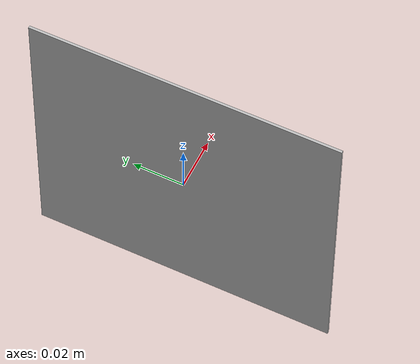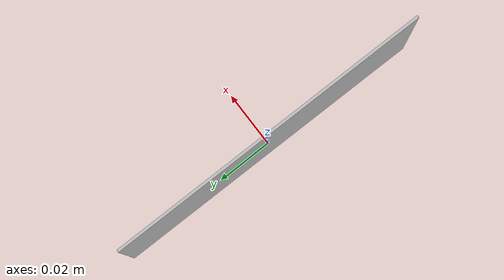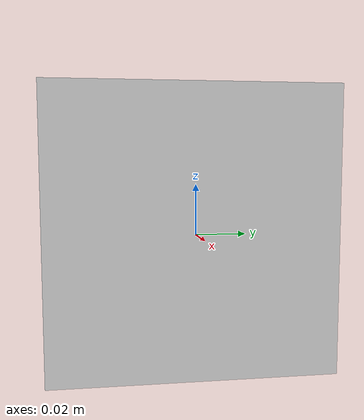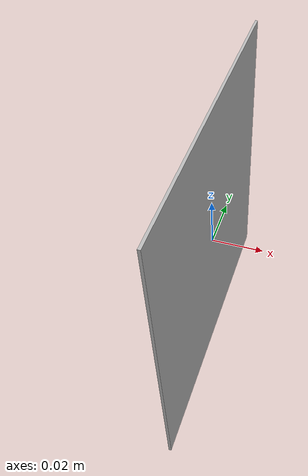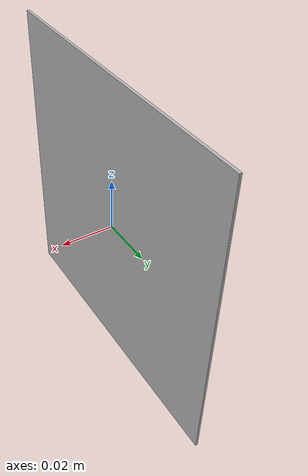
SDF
<?xml version="1.0" ?>
<sdf version="1.4">
  <model name="marker2_border_12cm">
    <static>true</static>
    <link name="marker2_12cm">
      <visual name="visual">
        <geometry>
          <box>
            <size>0.001 0.12 0.12</size>
            <!-- SIZE OF THE MARKER + MARGIN -->
          </box>
        </geometry>
        <material>
          <script>
            <uri>model://marker2_border_12cm/material/scripts</uri>
            <uri>model://marker2_border_12cm/material/textures</uri>
            <name>ARtrack/marker2_border_12cm</name>
          </script>
        </material>
      </visual>
      <collision name="collision">
        <geometry>
          <box>
            <size>0.001 0.12 0.12</size>
            <!-- SIZE OF THE MARKER + MARGIN -->
          </box>
        </geometry>
      </collision>
    </link>
  </model>
</sdf>
